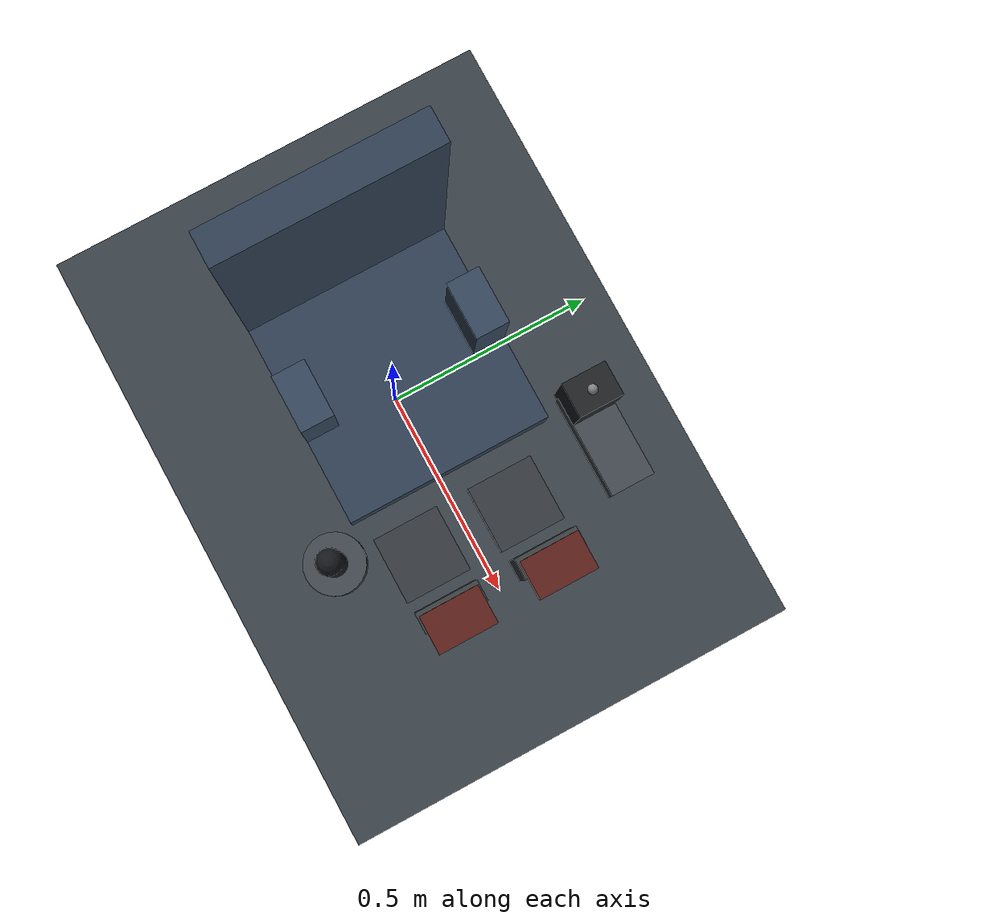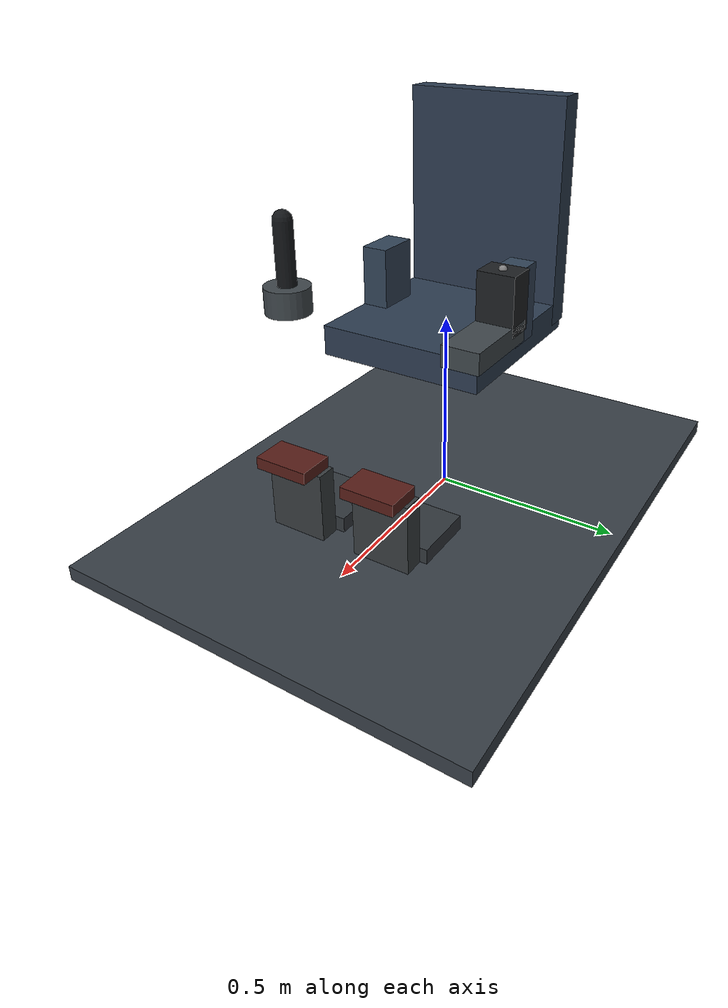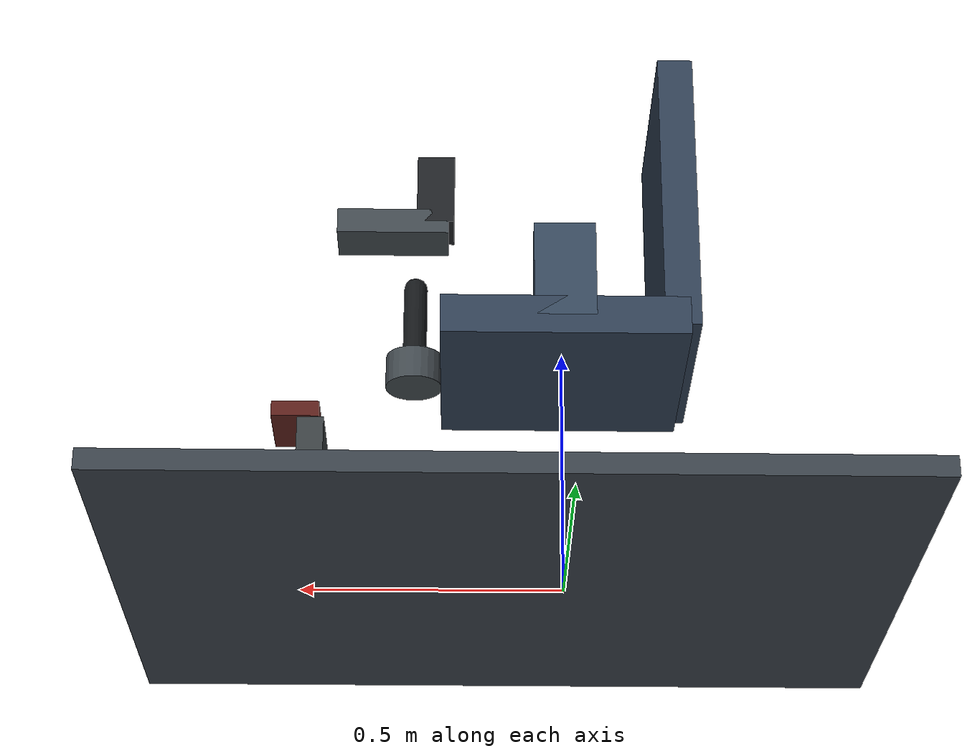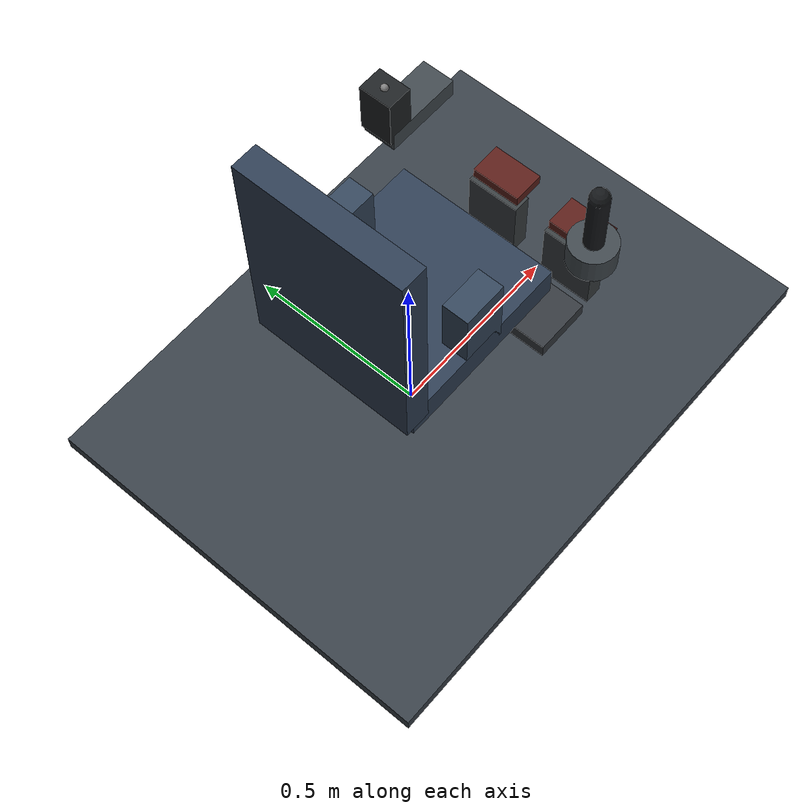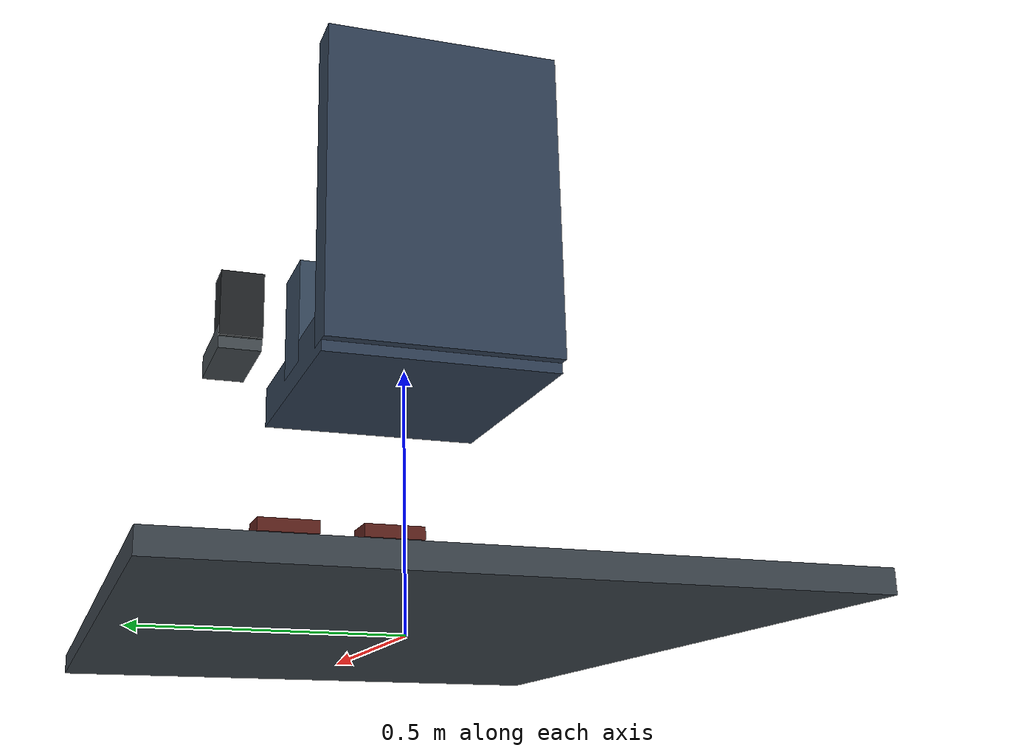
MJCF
<?xml version='1.0' encoding='utf-8'?>
<mujoco model="adjustable_bionic_pilot_cockpit">
  <compiler angle="radian" />
  <option timestep="0.002" gravity="0.0 0.0 -9.81" />
  <default>
    <geom friction="0.8 0.01 0.0001" />
  </default>
  <worldbody>
    <light name="cockpit_key" pos="-0.5 -0.5 2.0" />
    <geom name="cockpit_platform" type="box" pos="0.1 0.0 0.02" size="0.75 0.55 0.02" rgba="0.22 0.25 0.28 1" />
    <camera name="cockpit_overview" pos="-0.9 -1.0 1.15" xyaxes="0.72 -0.69 0.0 0.35 0.36 0.86" fovy="55.0" />
    <body name="adjustable_seat" pos="0.0 0.0 0.48">
      <geom name="seat_cushion" type="box" size="0.24 0.22 0.04" friction="0.9 0.01 0.0001" rgba="0.18 0.24 0.32 1" />
      <geom name="seat_back" type="box" pos="-0.225 0.0 0.28" size="0.035 0.22 0.3" friction="0.9 0.01 0.0001" rgba="0.18 0.24 0.32 1" />
      <geom name="left_pelvis_support" type="box" pos="0.0 0.185 0.1" size="0.06 0.035 0.1" friction="0.9 0.01 0.0001" rgba="0.20 0.27 0.35 1" />
      <geom name="right_pelvis_support" type="box" pos="0.0 -0.185 0.1" size="0.06 0.035 0.1" friction="0.9 0.01 0.0001" rgba="0.20 0.27 0.35 1" />
    </body>
    <body name="control_stick_base" pos="0.3 -0.28 0.6">
      <geom name="stick_base_geom" type="cylinder" size="0.06 0.035" contype="0" conaffinity="0" rgba="0.25 0.28 0.30 1" />
      <body name="stick_roll_frame">
        <joint name="stick_roll_joint" type="hinge" axis="1 0 0" range="-0.3 0.3" stiffness="5.0" damping="0.15" frictionloss="0.05" />
        <geom name="stick_roll_hub" type="sphere" size="0.025" mass="0.05" contype="0" conaffinity="0" rgba="0.3 0.32 0.34 1" />
        <body name="stick_pitch_frame">
          <joint name="stick_pitch_joint" type="hinge" axis="0 1 0" range="-0.3 0.3" stiffness="5.0" damping="0.15" frictionloss="0.05" />
          <geom name="stick_handle" type="capsule" fromto="0 0 0 0 0 0.2" size="0.025" mass="0.25" friction="0.7 0.01 0.0001" rgba="0.08 0.09 0.10 1" />
          <site name="stick_force_site" pos="0 0 0.2" size="0.01" />
        </body>
      </body>
    </body>
    <body name="throttle_base" pos="0.25 0.28 0.62">
      <geom name="throttle_rail" type="box" pos="0.08 0 0" size="0.10500000000000001 0.045 0.025" rgba="0.25 0.28 0.30 1" />
      <body name="throttle_handle_body">
        <joint name="throttle_joint" type="slide" axis="1 0 0" range="0 0.16" damping="4.0" frictionloss="2.0" />
        <geom name="throttle_handle" type="box" pos="0 0 0.07" size="0.035 0.045 0.07" mass="0.25" friction="0.7 0.01 0.0001" rgba="0.12 0.13 0.14 1" />
        <site name="throttle_force_site" pos="0 0 0.14" size="0.01" />
      </body>
    </body>
    <body name="left_rudder_pedal" pos="0.48 0.12 0.18">
      <joint name="left_rudder_joint" type="slide" axis="1 0 0" range="-0.06 0.06" stiffness="150.0" damping="12.0" frictionloss="1.0" />
      <geom name="left_rudder_plate" type="box" size="0.025 0.075 0.09" mass="0.6" friction="0.7 0.01 0.0001" rgba="0.22 0.24 0.25 1" />
      <body name="left_brake_plate" pos="0 0 0.07">
        <joint name="left_brake_joint" type="hinge" axis="0 1.0 0" range="0.0 0.35" stiffness="8.0" damping="0.8" frictionloss="0.1" />
        <geom name="left_brake_surface" type="box" pos="0.03 0 0.04" size="0.045 0.07 0.015" mass="0.2" friction="0.7 0.01 0.0001" rgba="0.35 0.12 0.10 1" />
      </body>
    </body>
    <body name="left_heel_support" pos="0.35 0.12 0.09">
      <geom name="left_heel_support_geom" type="box" size="0.08 0.08 0.02" friction="0.7 0.01 0.0001" rgba="0.20 0.22 0.24 1" />
    </body>
    <body name="right_rudder_pedal" pos="0.48 -0.12 0.18">
      <joint name="right_rudder_joint" type="slide" axis="1 0 0" range="-0.06 0.06" stiffness="150.0" damping="12.0" frictionloss="1.0" />
      <geom name="right_rudder_plate" type="box" size="0.025 0.075 0.09" mass="0.6" friction="0.7 0.01 0.0001" rgba="0.22 0.24 0.25 1" />
      <body name="right_brake_plate" pos="0 0 0.07">
        <joint name="right_brake_joint" type="hinge" axis="0 -1.0 0" range="0.0 0.35" stiffness="8.0" damping="0.8" frictionloss="0.1" />
        <geom name="right_brake_surface" type="box" pos="0.03 0 0.04" size="0.045 0.07 0.015" mass="0.2" friction="0.7 0.01 0.0001" rgba="0.35 0.12 0.10 1" />
      </body>
    </body>
    <body name="right_heel_support" pos="0.35 -0.12 0.09">
      <geom name="right_heel_support_geom" type="box" size="0.08 0.08 0.02" friction="0.7 0.01 0.0001" rgba="0.20 0.22 0.24 1" />
    </body>
  </worldbody>
  <equality>
    <joint name="rudder_opposed_coupling" joint1="right_rudder_joint" joint2="left_rudder_joint" polycoef="0 -1 0 0 0" />
  </equality>
  <sensor>
    <jointpos name="stick_roll_position" joint="stick_roll_joint" />
    <jointvel name="stick_roll_velocity" joint="stick_roll_joint" />
    <jointpos name="stick_pitch_position" joint="stick_pitch_joint" />
    <jointvel name="stick_pitch_velocity" joint="stick_pitch_joint" />
    <force name="stick_force" site="stick_force_site" />
    <torque name="stick_torque" site="stick_force_site" />
    <jointpos name="throttle_position" joint="throttle_joint" />
    <jointvel name="throttle_velocity" joint="throttle_joint" />
    <force name="throttle_force" site="throttle_force_site" />
    <jointpos name="left_rudder_position" joint="left_rudder_joint" />
    <jointvel name="left_rudder_velocity" joint="left_rudder_joint" />
    <jointpos name="left_brake_position" joint="left_brake_joint" />
    <jointvel name="left_brake_velocity" joint="left_brake_joint" />
    <jointpos name="right_rudder_position" joint="right_rudder_joint" />
    <jointvel name="right_rudder_velocity" joint="right_rudder_joint" />
    <jointpos name="right_brake_position" joint="right_brake_joint" />
    <jointvel name="right_brake_velocity" joint="right_brake_joint" />
  </sensor>
</mujoco>
